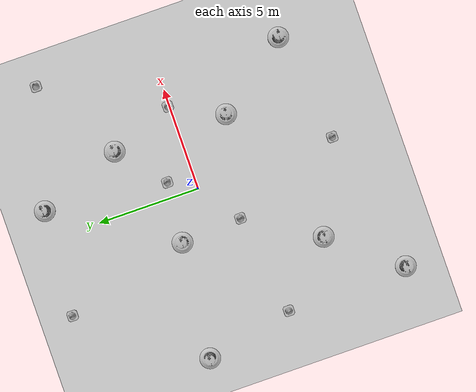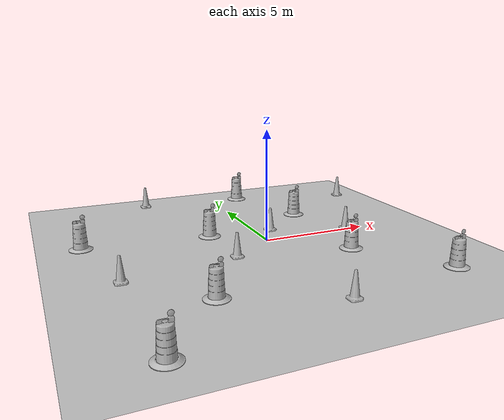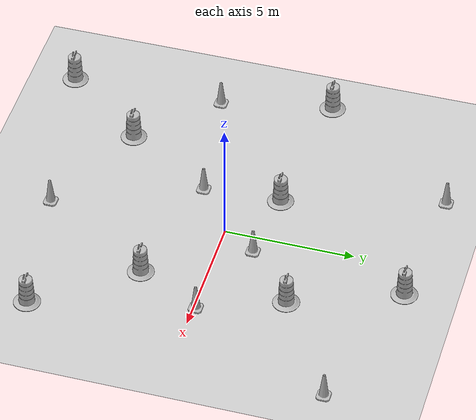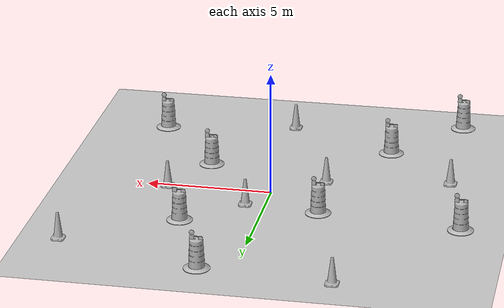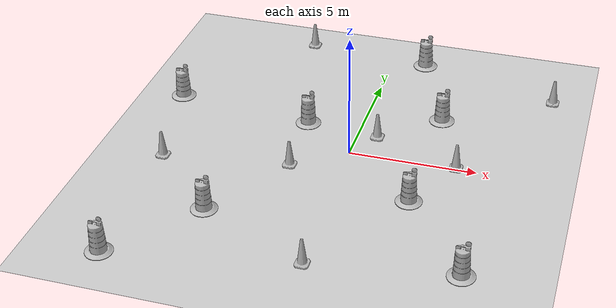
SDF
<sdf version="1.7">
 <world name="default">
  <light name="sun" type="directional">
   <pose>0 0 10 0 -0 0</pose>
   <diffuse>0.8 0.8 0.8 1</diffuse>
   <specular>0.2 0.2 0.2 1</specular>
   <attenuation>
    <range>1000</range>
    <constant>0.9</constant>
    <linear>0.01</linear>
    <quadratic>0.001</quadratic>
   </attenuation>
   <direction>-0.5 0.1 -0.9</direction>
   <spot><inner_angle>0</inner_angle><outer_angle>0</outer_angle><falloff>0</falloff></spot>
  </light>
  <model name="ground_plane">
   <static>1</static>
   <link name="link">
    <collision name="collision">
     <geometry><plane><normal>0 0 1</normal><size>100 100</size></plane></geometry>
     <surface>
      <contact><collide_bitmask>65535</collide_bitmask></contact>
      <friction><ode><mu>100</mu><mu2>50</mu2></ode></friction>
     </surface>
    </collision>
    <visual name="visual">
     <cast_shadows>0</cast_shadows>
     <geometry><plane><normal>0 0 1</normal><size>100 100</size></plane></geometry>
     <material>
      <script><uri>file://media/materials/scripts/gazebo.material</uri><name>Gazebo/Grey</name></script>
     </material>
    </visual>
   </link>
  </model>
  <gravity>0 0 -9.8</gravity>
  <magnetic_field>6e-06 2.3e-05 -4.2e-05</magnetic_field>
  <atmosphere type="adiabatic"/>
  <physics type="ode">
   <max_step_size>0.001</max_step_size>
   <real_time_factor>1</real_time_factor>
   <real_time_update_rate>1000</real_time_update_rate>
  </physics>
  <scene><ambient>0.4 0.4 0.4 1</ambient><background>0.7 0.7 0.7 1</background><shadows>1</shadows></scene>
  <spherical_coordinates>
   <surface_model>EARTH_WGS84</surface_model>
   <latitude_deg>0</latitude_deg>
   <longitude_deg>0</longitude_deg>
   <elevation>0</elevation>
   <heading_deg>0</heading_deg>
  </spherical_coordinates>
  <model name="Construction Barrel">
   <link name="link">
    <inertial>
     <pose>0 0 0.4 0 -0 0</pose>
     <mass>500</mass>
     <inertia><ixx>51.2096</ixx><iyy>51.2096</iyy><izz>25</izz><ixy>0</ixy><ixz>0</ixz><iyz>0</iyz></inertia>
    </inertial>
    <collision name="collision">
     <geometry><mesh><uri>model://construction_barrel/meshes/construction_barrel.dae</uri></mesh></geometry>
    </collision>
    <visual name="visual">
     <geometry><mesh><uri>model://construction_barrel/meshes/construction_barrel.dae</uri></mesh></geometry>
    </visual>
   </link>
   <pose>2.99265 3.19457 -4e-06 -5e-06 -7e-06 -2.5e-05</pose>
  </model>
  <model name="Construction Barrel_0">
   <link name="link">
    <inertial>
     <pose>0 0 0.4 0 -0 0</pose>
     <mass>500</mass>
     <inertia><ixx>51.2096</ixx><iyy>51.2096</iyy><izz>25</izz><ixy>0</ixy><ixz>0</ixz><iyz>0</iyz></inertia>
    </inertial>
    <collision name="collision">
     <geometry><mesh><uri>model://construction_barrel/meshes/construction_barrel.dae</uri></mesh></geometry>
    </collision>
    <visual name="visual">
     <geometry><mesh><uri>model://construction_barrel/meshes/construction_barrel.dae</uri></mesh></geometry>
    </visual>
   </link>
   <pose>-2.16666 1.57376 -4e-06 -5e-06 -7e-06 -2.4e-05</pose>
  </model>
  <model name="Construction Barrel_1">
   <link name="link">
    <inertial>
     <pose>0 0 0.4 0 -0 0</pose>
     <mass>500</mass>
     <inertia><ixx>51.2096</ixx><iyy>51.2096</iyy><izz>25</izz><ixy>0</ixy><ixz>0</ixz><iyz>0</iyz></inertia>
    </inertial>
    <collision name="collision">
     <geometry><mesh><uri>model://construction_barrel/meshes/construction_barrel.dae</uri></mesh></geometry>
    </collision>
    <visual name="visual">
     <geometry><mesh><uri>model://construction_barrel/meshes/construction_barrel.dae</uri></mesh></geometry>
    </visual>
   </link>
   <pose>2.92231 -2.40973 -4e-06 -5e-06 -7e-06 -2.2e-05</pose>
  </model>
  <model name="Construction Cone">
   <link name="link">
    <collision name="collision">
     <geometry>
      <mesh><scale>10 10 10</scale><uri>model://construction_cone/meshes/construction_cone.dae</uri></mesh>
     </geometry>
    </collision>
    <visual name="visual">
     <geometry>
      <mesh><scale>10 10 10</scale><uri>model://construction_cone/meshes/construction_cone.dae</uri></mesh>
     </geometry>
    </visual>
    <inertial>
     <inertia><ixx>1</ixx><ixy>0</ixy><ixz>0</ixz><iyy>1</iyy><iyz>0</iyz><izz>1</izz></inertia>
     <mass>1</mass>
    </inertial>
   </link>
   <pose>0.77907 1.30987 -0 0 -0 0</pose>
  </model>
  <model name="Construction Cone_0">
   <link name="link">
    <collision name="collision">
     <geometry>
      <mesh><scale>10 10 10</scale><uri>model://construction_cone/meshes/construction_cone.dae</uri></mesh>
     </geometry>
    </collision>
    <visual name="visual">
     <geometry>
      <mesh><scale>10 10 10</scale><uri>model://construction_cone/meshes/construction_cone.dae</uri></mesh>
     </geometry>
    </visual>
    <inertial>
     <inertia><ixx>1</ixx><ixy>0</ixy><ixz>0</ixz><iyy>1</iyy><iyz>0</iyz><izz>1</izz></inertia>
     <mass>1</mass>
    </inertial>
   </link>
   <pose>-1.98785 -1.4136 -9e-06 0 -0 0</pose>
  </model>
  <model name="Construction Cone_1">
   <link name="link">
    <collision name="collision">
     <geometry>
      <mesh><scale>10 10 10</scale><uri>model://construction_cone/meshes/construction_cone.dae</uri></mesh>
     </geometry>
    </collision>
    <visual name="visual">
     <geometry>
      <mesh><scale>10 10 10</scale><uri>model://construction_cone/meshes/construction_cone.dae</uri></mesh>
     </geometry>
    </visual>
    <inertial>
     <inertia><ixx>1</ixx><ixy>0</ixy><ixz>0</ixz><iyy>1</iyy><iyz>0</iyz><izz>1</izz></inertia>
     <mass>1</mass>
    </inertial>
   </link>
   <pose>4.18593 0.08871 -0 0 -1e-06 0</pose>
  </model>
  <model name="Construction Barrel_2">
   <link name="link">
    <inertial>
     <pose>0 0 0.4 0 -0 0</pose>
     <mass>500</mass>
     <inertia><ixx>51.2096</ixx><iyy>51.2096</iyy><izz>25</izz><ixy>0</ixy><ixz>0</ixz><iyz>0</iyz></inertia>
    </inertial>
    <collision name="collision">
     <geometry><mesh><uri>model://construction_barrel/meshes/construction_barrel.dae</uri></mesh></geometry>
    </collision>
    <visual name="visual">
     <geometry><mesh><uri>model://construction_barrel/meshes/construction_barrel.dae</uri></mesh></geometry>
    </visual>
   </link>
   <pose>-4.12681 -4.86988 -2e-06 -6e-06 -4e-06 -1.8e-05</pose>
  </model>
  <model name="Construction Barrel_3">
   <link name="link">
    <inertial>
     <pose>0 0 0.4 0 -0 0</pose>
     <mass>500</mass>
     <inertia><ixx>51.2096</ixx><iyy>51.2096</iyy><izz>25</izz><ixy>0</ixy><ixz>0</ixz><iyz>0</iyz></inertia>
    </inertial>
    <collision name="collision">
     <geometry><mesh><uri>model://construction_barrel/meshes/construction_barrel.dae</uri></mesh></geometry>
    </collision>
    <visual name="visual">
     <geometry><mesh><uri>model://construction_barrel/meshes/construction_barrel.dae</uri></mesh></geometry>
    </visual>
   </link>
   <pose>-7.80928 2.14557 -3e-06 -6e-06 -5e-06 -1.5e-05</pose>
  </model>
  <model name="Construction Cone_2">
   <link name="link">
    <collision name="collision">
     <geometry>
      <mesh><scale>10 10 10</scale><uri>model://construction_cone/meshes/construction_cone.dae</uri></mesh>
     </geometry>
    </collision>
    <visual name="visual">
     <geometry>
      <mesh><scale>10 10 10</scale><uri>model://construction_cone/meshes/construction_cone.dae</uri></mesh>
     </geometry>
    </visual>
    <inertial>
     <inertia><ixx>1</ixx><ixy>0</ixy><ixz>0</ixz><iyy>1</iyy><iyz>0</iyz><izz>1</izz></inertia>
     <mass>1</mass>
    </inertial>
   </link>
   <pose>0.228923 -6.82012 -0 0 -0 0</pose>
  </model>
  <model name="Construction Cone_3">
   <link name="link">
    <collision name="collision">
     <geometry>
      <mesh><scale>10 10 10</scale><uri>model://construction_cone/meshes/construction_cone.dae</uri></mesh>
     </geometry>
    </collision>
    <visual name="visual">
     <geometry>
      <mesh><scale>10 10 10</scale><uri>model://construction_cone/meshes/construction_cone.dae</uri></mesh>
     </geometry>
    </visual>
    <inertial>
     <inertia><ixx>1</ixx><ixy>0</ixy><ixz>0</ixz><iyy>1</iyy><iyz>0</iyz><izz>1</izz></inertia>
     <mass>1</mass>
    </inertial>
   </link>
   <pose>-3.73498 7.6639 -0 0 -0 0</pose>
  </model>
  <model name="Construction Barrel_4">
   <link name="link">
    <inertial>
     <pose>0 0 0.4 0 -0 0</pose>
     <mass>500</mass>
     <inertia><ixx>51.2096</ixx><iyy>51.2096</iyy><izz>25</izz><ixy>0</ixy><ixz>0</ixz><iyz>0</iyz></inertia>
    </inertial>
    <collision name="collision">
     <geometry><mesh><uri>model://construction_barrel/meshes/construction_barrel.dae</uri></mesh></geometry>
    </collision>
    <visual name="visual">
     <geometry><mesh><uri>model://construction_barrel/meshes/construction_barrel.dae</uri></mesh></geometry>
    </visual>
   </link>
   <pose>1.41115 7.27103 -1e-06 -3e-06 -1e-06 -1e-05</pose>
  </model>
  <model name="Construction Cone_4">
   <link name="link">
    <collision name="collision">
     <geometry>
      <mesh><scale>10 10 10</scale><uri>model://construction_cone/meshes/construction_cone.dae</uri></mesh>
     </geometry>
    </collision>
    <visual name="visual">
     <geometry>
      <mesh><scale>10 10 10</scale><uri>model://construction_cone/meshes/construction_cone.dae</uri></mesh>
     </geometry>
    </visual>
    <inertial>
     <inertia><ixx>1</ixx><ixy>0</ixy><ixz>0</ixz><iyy>1</iyy><iyz>0</iyz><izz>1</izz></inertia>
     <mass>1</mass>
    </inertial>
   </link>
   <pose>-6.90539 -2.14232 -0 0 -0 0</pose>
  </model>
  <model name="Construction Barrel_5">
   <link name="link">
    <inertial>
     <pose>0 0 0.4 0 -0 0</pose>
     <mass>500</mass>
     <inertia><ixx>51.2096</ixx><iyy>51.2096</iyy><izz>25</izz><ixy>0</ixy><ixz>0</ixz><iyz>0</iyz></inertia>
    </inertial>
    <collision name="collision">
     <geometry><mesh><uri>model://construction_barrel/meshes/construction_barrel.dae</uri></mesh></geometry>
    </collision>
    <visual name="visual">
     <geometry><mesh><uri>model://construction_barrel/meshes/construction_barrel.dae</uri></mesh></geometry>
    </visual>
   </link>
   <pose>5.56433 -5.96424 -2e-06 4e-06 9e-06 -8e-06</pose>
  </model>
  <model name="Construction Barrel_6">
   <link name="link">
    <inertial>
     <pose>0 0 0.4 0 -0 0</pose>
     <mass>500</mass>
     <inertia><ixx>51.2096</ixx><iyy>51.2096</iyy><izz>25</izz><ixy>0</ixy><ixz>0</ixz><iyz>0</iyz></inertia>
    </inertial>
    <collision name="collision">
     <geometry><mesh><uri>model://construction_barrel/meshes/construction_barrel.dae</uri></mesh></geometry>
    </collision>
    <visual name="visual">
     <geometry><mesh><uri>model://construction_barrel/meshes/construction_barrel.dae</uri></mesh></geometry>
    </visual>
   </link>
   <pose>-6.73961 -8.10165 0 3e-06 7e-06 -7e-06</pose>
  </model>
  <model name="Construction Cone_5">
   <link name="link">
    <collision name="collision">
     <geometry>
      <mesh><scale>10 10 10</scale><uri>model://construction_cone/meshes/construction_cone.dae</uri></mesh>
     </geometry>
    </collision>
    <visual name="visual">
     <geometry>
      <mesh><scale>10 10 10</scale><uri>model://construction_cone/meshes/construction_cone.dae</uri></mesh>
     </geometry>
    </visual>
    <inertial>
     <inertia><ixx>1</ixx><ixy>0</ixy><ixz>0</ixz><iyy>1</iyy><iyz>0</iyz><izz>1</izz></inertia>
     <mass>1</mass>
    </inertial>
   </link>
   <pose>7.14853 5.7108 -0 0 -0 0</pose>
  </model>
 </world>
</sdf>
